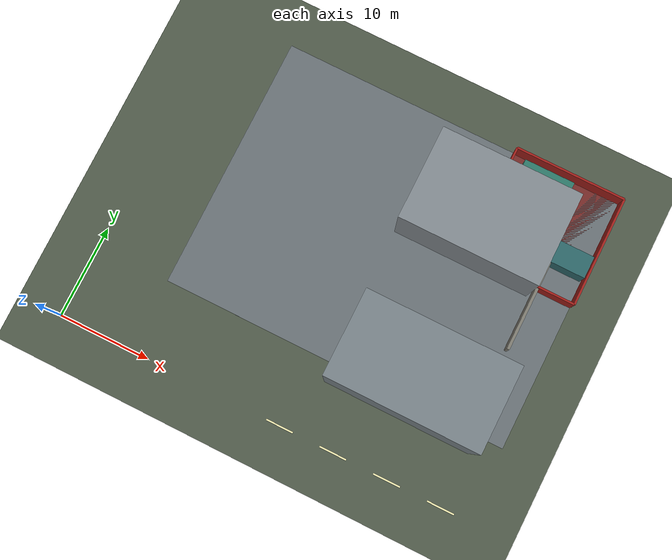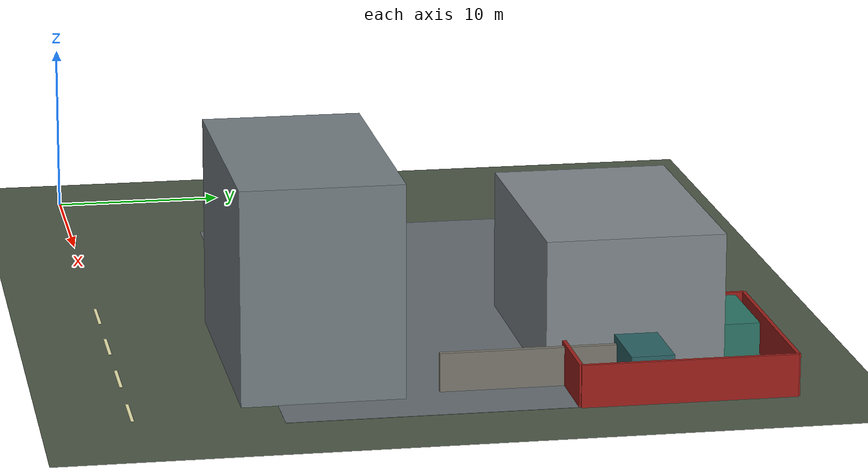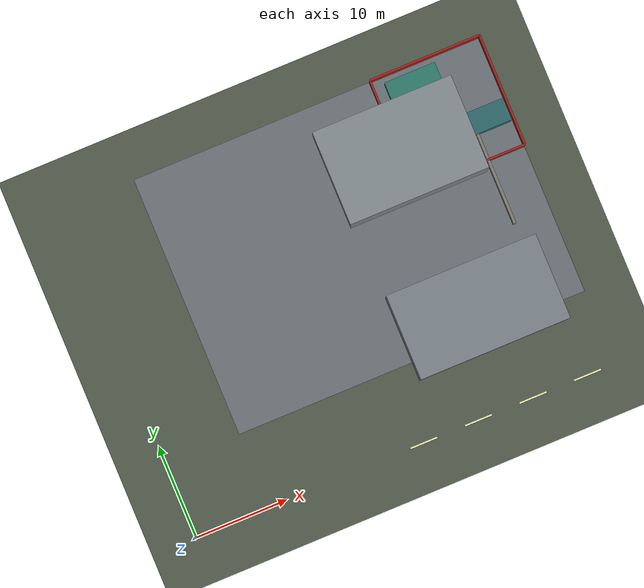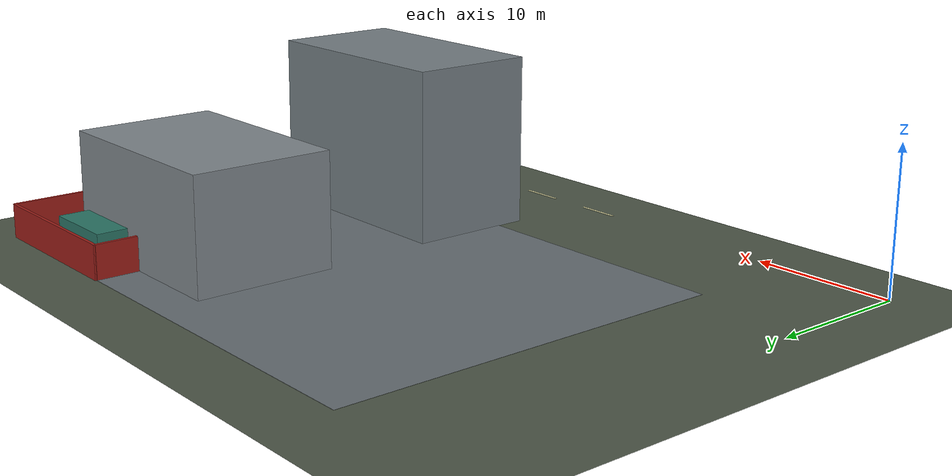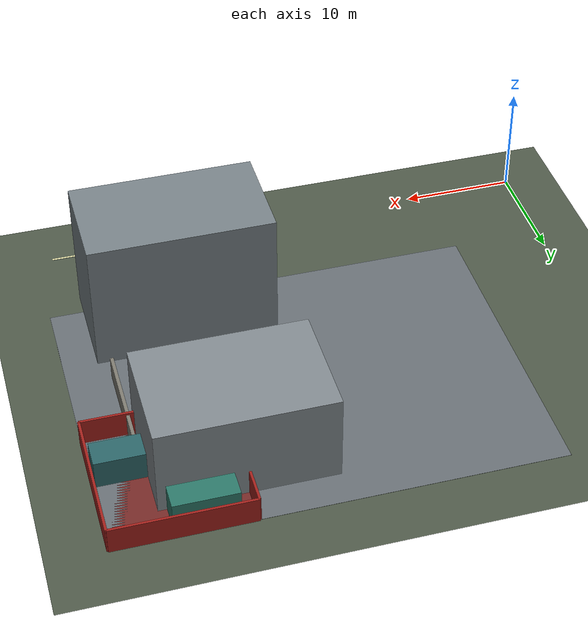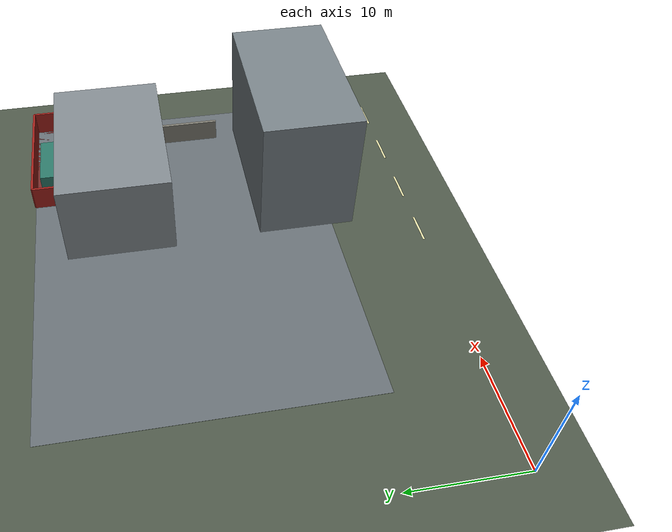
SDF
<sdf version="1.9">
 <world name="gsi_search_world_v2_campus">
  <model name="ground_plane">
   <static>true</static>
   <link name="link">
    <collision name="collision">
     <geometry><plane><normal>0 0 1</normal><size>130 110</size></plane></geometry>
    </collision>
    <visual name="visual">
     <geometry><plane><normal>0 0 1</normal><size>130 110</size></plane></geometry>
     <material>
      <ambient>0.3 0.34 0.28 1</ambient>
      <diffuse>0.3 0.34 0.28 1</diffuse>
      <specular>0.12 0.12 0.12 1</specular>
     </material>
    </visual>
   </link>
  </model>
  <model name="semantic-academic-core">
   <static>true</static>
   <pose>27 22 0.015 0 0 0</pose>
   <link name="link">
    <visual name="visual">
     <geometry><box><size>38 28 0.02</size></box></geometry>
     <cast_shadows>false</cast_shadows>
     <material>
      <ambient>0.4 0.43 0.45 1</ambient>
      <diffuse>0.4 0.43 0.45 1</diffuse>
      <specular>0.12 0.12 0.12 1</specular>
     </material>
    </visual>
   </link>
  </model>
  <model name="semantic-restricted-utilities">
   <static>true</static>
   <pose>40 30 0.015 0 0 0</pose>
   <link name="link">
    <visual name="visual">
     <geometry><box><size>12 12 0.02</size></box></geometry>
     <cast_shadows>false</cast_shadows>
     <material>
      <ambient>0.45 0.16 0.15 1</ambient>
      <diffuse>0.45 0.16 0.15 1</diffuse>
      <specular>0.12 0.12 0.12 1</specular>
     </material>
    </visual>
   </link>
  </model>
  <model name="road-east-west-marking-13">
   <static>true</static>
   <pose>25 0 0.04 0 0 0</pose>
   <link name="link">
    <visual name="visual">
     <geometry><box><size>3 0.18 0.025</size></box></geometry>
     <cast_shadows>false</cast_shadows>
     <material>
      <ambient>0.92 0.9 0.68 1</ambient>
      <diffuse>0.92 0.9 0.68 1</diffuse>
      <specular>0.12 0.12 0.12 1</specular>
     </material>
    </visual>
   </link>
  </model>
  <model name="road-east-west-marking-14">
   <static>true</static>
   <pose>31 0 0.04 0 0 0</pose>
   <link name="link">
    <visual name="visual">
     <geometry><box><size>3 0.18 0.025</size></box></geometry>
     <cast_shadows>false</cast_shadows>
     <material>
      <ambient>0.92 0.9 0.68 1</ambient>
      <diffuse>0.92 0.9 0.68 1</diffuse>
      <specular>0.12 0.12 0.12 1</specular>
     </material>
    </visual>
   </link>
  </model>
  <model name="road-east-west-marking-15">
   <static>true</static>
   <pose>37 0 0.04 0 0 0</pose>
   <link name="link">
    <visual name="visual">
     <geometry><box><size>3 0.18 0.025</size></box></geometry>
     <cast_shadows>false</cast_shadows>
     <material>
      <ambient>0.92 0.9 0.68 1</ambient>
      <diffuse>0.92 0.9 0.68 1</diffuse>
      <specular>0.12 0.12 0.12 1</specular>
     </material>
    </visual>
   </link>
  </model>
  <model name="road-east-west-marking-16">
   <static>true</static>
   <pose>43 0 0.04 0 0 0</pose>
   <link name="link">
    <visual name="visual">
     <geometry><box><size>3 0.18 0.025</size></box></geometry>
     <cast_shadows>false</cast_shadows>
     <material>
      <ambient>0.92 0.9 0.68 1</ambient>
      <diffuse>0.92 0.9 0.68 1</diffuse>
      <specular>0.12 0.12 0.12 1</specular>
     </material>
    </visual>
   </link>
  </model>
  <model name="engineering">
   <static>true</static>
   <pose>35 10.5 6 0 0 0</pose>
   <link name="link">
    <collision name="collision"><geometry><box><size>16 9 12</size></box></geometry></collision>
    <visual name="visual">
     <geometry><box><size>16 9 12</size></box></geometry>
     <material>
      <ambient>0.46 0.5 0.52 1</ambient>
      <diffuse>0.46 0.5 0.52 1</diffuse>
      <specular>0.12 0.12 0.12 1</specular>
     </material>
    </visual>
   </link>
  </model>
  <model name="laboratory">
   <static>true</static>
   <pose>34 28 4 0 0 0</pose>
   <link name="link">
    <collision name="collision"><geometry><box><size>15 10 8</size></box></geometry></collision>
    <visual name="visual">
     <geometry><box><size>15 10 8</size></box></geometry>
     <material>
      <ambient>0.5 0.53 0.55 1</ambient>
      <diffuse>0.5 0.53 0.55 1</diffuse>
      <specular>0.12 0.12 0.12 1</specular>
     </material>
    </visual>
   </link>
  </model>
  <model name="container-01">
   <static>true</static>
   <pose>38 28 1.3 0 0 0</pose>
   <link name="link">
    <collision name="collision"><geometry><box><size>5.5 2.4 2.6</size></box></geometry></collision>
    <visual name="visual">
     <geometry><box><size>5.5 2.4 2.6</size></box></geometry>
     <material>
      <ambient>0.17 0.32 0.4 1</ambient>
      <diffuse>0.17 0.32 0.4 1</diffuse>
      <specular>0.12 0.12 0.12 1</specular>
     </material>
    </visual>
   </link>
  </model>
  <model name="container-02">
   <static>true</static>
   <pose>43 28 1.3 0 0 0</pose>
   <link name="link">
    <collision name="collision"><geometry><box><size>5.5 2.4 2.6</size></box></geometry></collision>
    <visual name="visual">
     <geometry><box><size>5.5 2.4 2.6</size></box></geometry>
     <material>
      <ambient>0.17 0.39 0.4 1</ambient>
      <diffuse>0.17 0.39 0.4 1</diffuse>
      <specular>0.12 0.12 0.12 1</specular>
     </material>
    </visual>
   </link>
  </model>
  <model name="container-03">
   <static>true</static>
   <pose>38 34 1.3 0 0 0</pose>
   <link name="link">
    <collision name="collision"><geometry><box><size>5.5 2.4 2.6</size></box></geometry></collision>
    <visual name="visual">
     <geometry><box><size>5.5 2.4 2.6</size></box></geometry>
     <material>
      <ambient>0.17 0.46 0.4 1</ambient>
      <diffuse>0.17 0.46 0.4 1</diffuse>
      <specular>0.12 0.12 0.12 1</specular>
     </material>
    </visual>
   </link>
  </model>
  <model name="campus-service-wall">
   <static>true</static>
   <pose>42 23 1.1 0 0 0</pose>
   <link name="link">
    <collision name="collision"><geometry><box><size>0.3 12 2.2</size></box></geometry></collision>
    <visual name="visual">
     <geometry><box><size>0.3 12 2.2</size></box></geometry>
     <material>
      <ambient>0.48 0.47 0.43 1</ambient>
      <diffuse>0.48 0.47 0.43 1</diffuse>
      <specular>0.12 0.12 0.12 1</specular>
     </material>
    </visual>
   </link>
  </model>
  <model name="restricted-utilities-fence-south">
   <static>true</static>
   <pose>40 24 1.2 0 0 0</pose>
   <link name="link">
    <collision name="collision"><geometry><box><size>12 0.22 2.4</size></box></geometry></collision>
    <visual name="visual">
     <geometry><box><size>12 0.22 2.4</size></box></geometry>
     <material>
      <ambient>0.62 0.12 0.1 1</ambient>
      <diffuse>0.62 0.12 0.1 1</diffuse>
      <specular>0.12 0.12 0.12 1</specular>
     </material>
    </visual>
   </link>
  </model>
  <model name="restricted-utilities-fence-north">
   <static>true</static>
   <pose>40 36 1.2 0 0 0</pose>
   <link name="link">
    <collision name="collision"><geometry><box><size>12 0.22 2.4</size></box></geometry></collision>
    <visual name="visual">
     <geometry><box><size>12 0.22 2.4</size></box></geometry>
     <material>
      <ambient>0.62 0.12 0.1 1</ambient>
      <diffuse>0.62 0.12 0.1 1</diffuse>
      <specular>0.12 0.12 0.12 1</specular>
     </material>
    </visual>
   </link>
  </model>
  <model name="restricted-utilities-fence-west">
   <static>true</static>
   <pose>34 30 1.2 0 0 0</pose>
   <link name="link">
    <collision name="collision"><geometry><box><size>0.22 12 2.4</size></box></geometry></collision>
    <visual name="visual">
     <geometry><box><size>0.22 12 2.4</size></box></geometry>
     <material>
      <ambient>0.62 0.12 0.1 1</ambient>
      <diffuse>0.62 0.12 0.1 1</diffuse>
      <specular>0.12 0.12 0.12 1</specular>
     </material>
    </visual>
   </link>
  </model>
  <model name="restricted-utilities-fence-east">
   <static>true</static>
   <pose>46 30 1.2 0 0 0</pose>
   <link name="link">
    <collision name="collision"><geometry><box><size>0.22 12 2.4</size></box></geometry></collision>
    <visual name="visual">
     <geometry><box><size>0.22 12 2.4</size></box></geometry>
     <material>
      <ambient>0.62 0.12 0.1 1</ambient>
      <diffuse>0.62 0.12 0.1 1</diffuse>
      <specular>0.12 0.12 0.12 1</specular>
     </material>
    </visual>
   </link>
  </model>
 </world>
</sdf>
